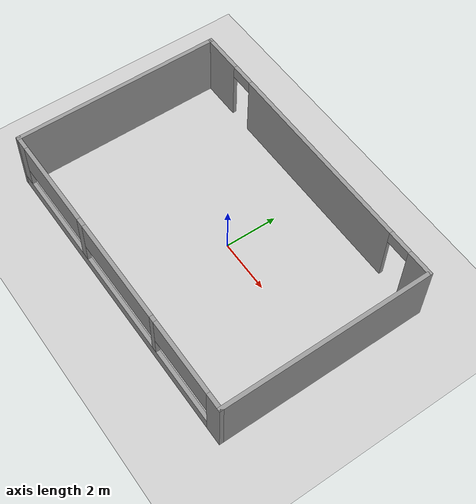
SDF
<sdf version="1.7">
 <world name="default">
  <light name="sun" type="directional">
   <pose>0 0 10 0 -0 0</pose>
   <diffuse>0.8 0.8 0.8 1</diffuse>
   <specular>0.2 0.2 0.2 1</specular>
   <attenuation>
    <range>1000</range>
    <constant>0.9</constant>
    <linear>0.01</linear>
    <quadratic>0.001</quadratic>
   </attenuation>
   <direction>-0.5 0.1 -0.9</direction>
   <spot><inner_angle>0</inner_angle><outer_angle>0</outer_angle><falloff>0</falloff></spot>
  </light>
  <model name="ground_plane">
   <static>1</static>
   <link name="link">
    <collision name="collision">
     <geometry><plane><normal>0 0 1</normal><size>100 100</size></plane></geometry>
     <surface><friction><ode><mu>100</mu><mu2>50</mu2></ode></friction></surface>
    </collision>
    <visual name="visual">
     <cast_shadows>0</cast_shadows>
     <geometry><plane><normal>0 0 1</normal><size>100 100</size></plane></geometry>
     <material>
      <script><uri>file://media/materials/scripts/gazebo.material</uri><name>Gazebo/Grey</name></script>
     </material>
    </visual>
   </link>
  </model>
  <gravity>0 0 -9.8</gravity>
  <magnetic_field>6e-06 2.3e-05 -4.2e-05</magnetic_field>
  <atmosphere type="adiabatic"/>
  <physics type="ode">
   <max_step_size>0.001</max_step_size>
   <real_time_factor>1</real_time_factor>
   <real_time_update_rate>1000</real_time_update_rate>
  </physics>
  <scene><ambient>0.4 0.4 0.4 1</ambient><background>0.7 0.7 0.7 1</background><shadows>1</shadows></scene>
  <audio><device>default</device></audio>
  <spherical_coordinates>
   <surface_model>EARTH_WGS84</surface_model>
   <latitude_deg>0</latitude_deg>
   <longitude_deg>0</longitude_deg>
   <elevation>0</elevation>
   <heading_deg>0</heading_deg>
  </spherical_coordinates>
  <model name="classroom">
   <pose>-0.3096 -0.302773 0 0 -0 0</pose>
   <link name="Wall_0">
    <collision name="Wall_0_Collision">
     <geometry><box><size>8 0.15 2.5</size></box></geometry>
     <pose>0 0 1.25 0 -0 0</pose>
    </collision>
    <visual name="Wall_0_Visual">
     <pose>0 0 1.25 0 -0 0</pose>
     <geometry><box><size>8 0.15 2.5</size></box></geometry>
     <material>
      <script><uri>file://media/materials/scripts/gazebo.material</uri><name>Gazebo/Grey</name></script>
      <ambient>1 1 1 1</ambient>
     </material>
     <meta><layer>0</layer></meta>
    </visual>
    <pose>-5.925 -0 0 0 -0 1.5708</pose>
   </link>
   <link name="Wall_1">
    <pose>-0 3.925 0 0 -0 0</pose>
    <visual name="Wall_1_Visual_0">
     <pose>-5.1901 0 1.25 0 -0 0</pose>
     <geometry><box><size>1.61981 0.15 2.5</size></box></geometry>
     <material>
      <script><uri>file://media/materials/scripts/gazebo.material</uri><name>Gazebo/Grey</name></script>
      <ambient>1 1 1 1</ambient>
     </material>
     <meta><layer>0</layer></meta>
    </visual>
    <collision name="Wall_1_Collision_0">
     <geometry><box><size>1.61981 0.15 2.5</size></box></geometry>
     <pose>-5.1901 0 1.25 0 -0 0</pose>
    </collision>
    <visual name="Wall_1_Visual_1">
     <pose>0.311148 0 1.25 0 -0 0</pose>
     <geometry><box><size>7.58268 0.15 2.5</size></box></geometry>
     <material>
      <script><uri>file://media/materials/scripts/gazebo.material</uri><name>Gazebo/Grey</name></script>
      <ambient>1 1 1 1</ambient>
     </material>
     <meta><layer>0</layer></meta>
    </visual>
    <collision name="Wall_1_Collision_1">
     <geometry><box><size>7.58268 0.15 2.5</size></box></geometry>
     <pose>0.311148 0 1.25 0 -0 0</pose>
    </collision>
    <visual name="Wall_1_Visual_2">
     <pose>5.50124 0 1.25 0 -0 0</pose>
     <geometry><box><size>0.997511 0.15 2.5</size></box></geometry>
     <material>
      <script><uri>file://media/materials/scripts/gazebo.material</uri><name>Gazebo/Grey</name></script>
      <ambient>1 1 1 1</ambient>
     </material>
     <meta><layer>0</layer></meta>
    </visual>
    <collision name="Wall_1_Collision_2">
     <geometry><box><size>0.997511 0.15 2.5</size></box></geometry>
     <pose>5.50124 0 1.25 0 -0 0</pose>
    </collision>
    <visual name="Wall_1_Visual_3">
     <pose>-3.93019 0 2.25 0 -0 0</pose>
     <geometry><box><size>0.9 0.15 0.5</size></box></geometry>
     <material>
      <script><uri>file://media/materials/scripts/gazebo.material</uri><name>Gazebo/Grey</name></script>
      <ambient>1 1 1 1</ambient>
     </material>
     <meta><layer>0</layer></meta>
    </visual>
    <collision name="Wall_1_Collision_3">
     <geometry><box><size>0.9 0.15 0.5</size></box></geometry>
     <pose>-3.93019 0 2.25 0 -0 0</pose>
    </collision>
    <visual name="Wall_1_Visual_4">
     <pose>4.55249 0 2.25 0 -0 0</pose>
     <geometry><box><size>0.9 0.15 0.5</size></box></geometry>
     <material>
      <script><uri>file://media/materials/scripts/gazebo.material</uri><name>Gazebo/Grey</name></script>
      <ambient>1 1 1 1</ambient>
     </material>
     <meta><layer>0</layer></meta>
    </visual>
    <collision name="Wall_1_Collision_4">
     <geometry><box><size>0.9 0.15 0.5</size></box></geometry>
     <pose>4.55249 0 2.25 0 -0 0</pose>
    </collision>
   </link>
   <link name="Wall_2">
    <collision name="Wall_2_Collision">
     <geometry><box><size>8 0.15 2.5</size></box></geometry>
     <pose>0 0 1.25 0 -0 0</pose>
    </collision>
    <visual name="Wall_2_Visual">
     <pose>0 0 1.25 0 -0 0</pose>
     <geometry><box><size>8 0.15 2.5</size></box></geometry>
     <material>
      <script><uri>file://media/materials/scripts/gazebo.material</uri><name>Gazebo/Grey</name></script>
      <ambient>1 1 1 1</ambient>
     </material>
     <meta><layer>0</layer></meta>
    </visual>
    <pose>5.925 -0 0 0 -0 -1.5708</pose>
   </link>
   <link name="Wall_3">
    <pose>-0 -3.925 0 0 -0 3.14159</pose>
    <visual name="Wall_3_Visual_0">
     <pose>-5.65989 0 1.25 0 -0 0</pose>
     <geometry><box><size>0.68022 0.15 2.5</size></box></geometry>
     <material>
      <script><uri>file://media/materials/scripts/gazebo.material</uri><name>Gazebo/Grey</name></script>
      <ambient>1 1 1 1</ambient>
     </material>
     <meta><layer>0</layer></meta>
    </visual>
    <collision name="Wall_3_Collision_0">
     <geometry><box><size>0.68022 0.15 2.5</size></box></geometry>
     <pose>-5.65989 0 1.25 0 -0 0</pose>
    </collision>
    <visual name="Wall_3_Visual_1">
     <pose>0.34011 0 0.25 0 -0 0</pose>
     <geometry><box><size>11.3198 0.15 0.5</size></box></geometry>
     <material>
      <script><uri>file://media/materials/scripts/gazebo.material</uri><name>Gazebo/Grey</name></script>
      <ambient>1 1 1 1</ambient>
     </material>
     <meta><layer>0</layer></meta>
    </visual>
    <collision name="Wall_3_Collision_1">
     <geometry><box><size>11.3198 0.15 0.5</size></box></geometry>
     <pose>0.34011 0 0.25 0 -0 0</pose>
    </collision>
    <visual name="Wall_3_Visual_2">
     <pose>-2.40121 0 1.5 0 -0 0</pose>
     <geometry><box><size>0.214424 0.15 2</size></box></geometry>
     <material>
      <script><uri>file://media/materials/scripts/gazebo.material</uri><name>Gazebo/Grey</name></script>
      <ambient>1 1 1 1</ambient>
     </material>
     <meta><layer>0</layer></meta>
    </visual>
    <collision name="Wall_3_Collision_2">
     <geometry><box><size>0.214424 0.15 2</size></box></geometry>
     <pose>-2.40121 0 1.5 0 -0 0</pose>
    </collision>
    <visual name="Wall_3_Visual_3">
     <pose>1.81389 0 1.5 0 -0 0</pose>
     <geometry><box><size>0.319364 0.15 2</size></box></geometry>
     <material>
      <script><uri>file://media/materials/scripts/gazebo.material</uri><name>Gazebo/Grey</name></script>
      <ambient>1 1 1 1</ambient>
     </material>
     <meta><layer>0</layer></meta>
    </visual>
    <collision name="Wall_3_Collision_3">
     <geometry><box><size>0.319364 0.15 2</size></box></geometry>
     <pose>1.81389 0 1.5 0 -0 0</pose>
    </collision>
    <visual name="Wall_3_Visual_4">
     <pose>5.70729 0 1.5 0 -0 0</pose>
     <geometry><box><size>0.585424 0.15 2</size></box></geometry>
     <material>
      <script><uri>file://media/materials/scripts/gazebo.material</uri><name>Gazebo/Grey</name></script>
      <ambient>1 1 1 1</ambient>
     </material>
     <meta><layer>0</layer></meta>
    </visual>
    <collision name="Wall_3_Collision_4">
     <geometry><box><size>0.585424 0.15 2</size></box></geometry>
     <pose>5.70729 0 1.5 0 -0 0</pose>
    </collision>
    <visual name="Wall_3_Visual_5">
     <pose>-3.9141 0 1.9 0 -0 0</pose>
     <geometry><box><size>2.81136 0.15 1.2</size></box></geometry>
     <material>
      <script><uri>file://media/materials/scripts/gazebo.material</uri><name>Gazebo/Grey</name></script>
      <ambient>1 1 1 1</ambient>
     </material>
     <meta><layer>0</layer></meta>
    </visual>
    <collision name="Wall_3_Collision_5">
     <geometry><box><size>2.81136 0.15 1.2</size></box></geometry>
     <pose>-3.9141 0 1.9 0 -0 0</pose>
    </collision>
    <visual name="Wall_3_Visual_6">
     <pose>-0.319894 0 1.9 0 -0 0</pose>
     <geometry><box><size>3.94821 0.15 1.2</size></box></geometry>
     <material>
      <script><uri>file://media/materials/scripts/gazebo.material</uri><name>Gazebo/Grey</name></script>
      <ambient>1 1 1 1</ambient>
     </material>
     <meta><layer>0</layer></meta>
    </visual>
    <collision name="Wall_3_Collision_6">
     <geometry><box><size>3.94821 0.15 1.2</size></box></geometry>
     <pose>-0.319894 0 1.9 0 -0 0</pose>
    </collision>
    <visual name="Wall_3_Visual_7">
     <pose>3.69408 0 1.9 0 -0 0</pose>
     <geometry><box><size>3.441 0.15 1.2</size></box></geometry>
     <material>
      <script><uri>file://media/materials/scripts/gazebo.material</uri><name>Gazebo/Grey</name></script>
      <ambient>1 1 1 1</ambient>
     </material>
     <meta><layer>0</layer></meta>
    </visual>
    <collision name="Wall_3_Collision_7">
     <geometry><box><size>3.441 0.15 1.2</size></box></geometry>
     <pose>3.69408 0 1.9 0 -0 0</pose>
    </collision>
   </link>
   <static>1</static>
  </model>
 </world>
</sdf>
